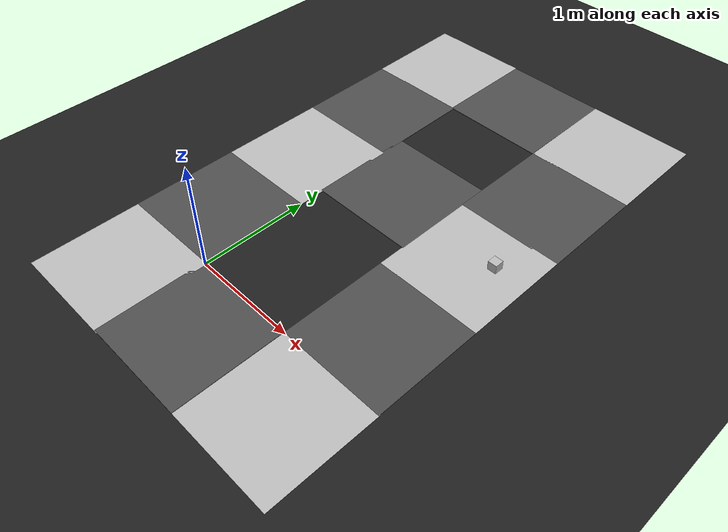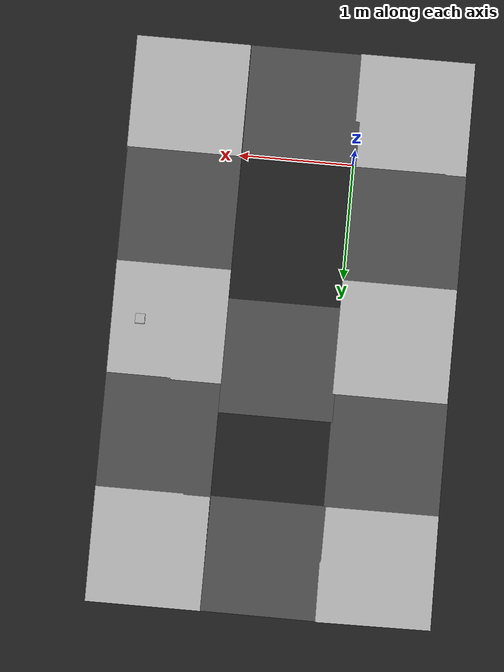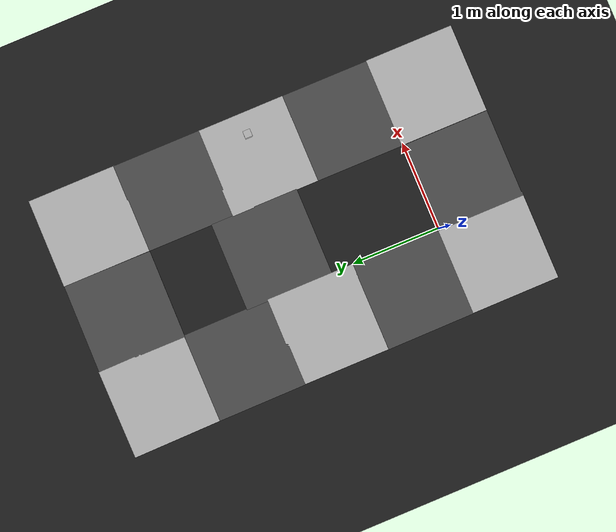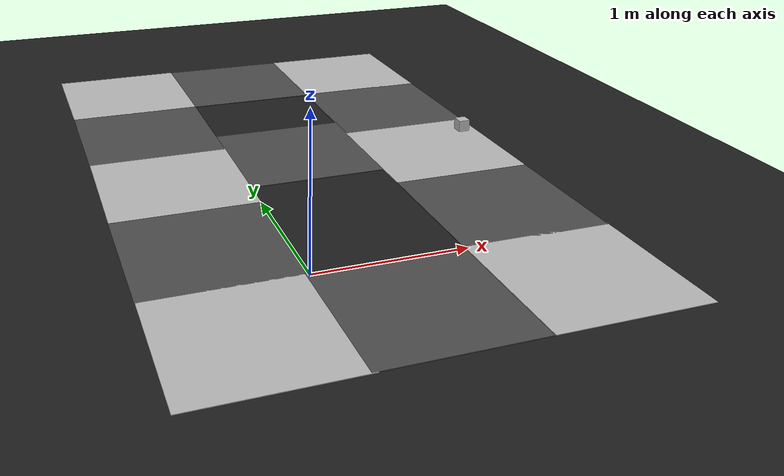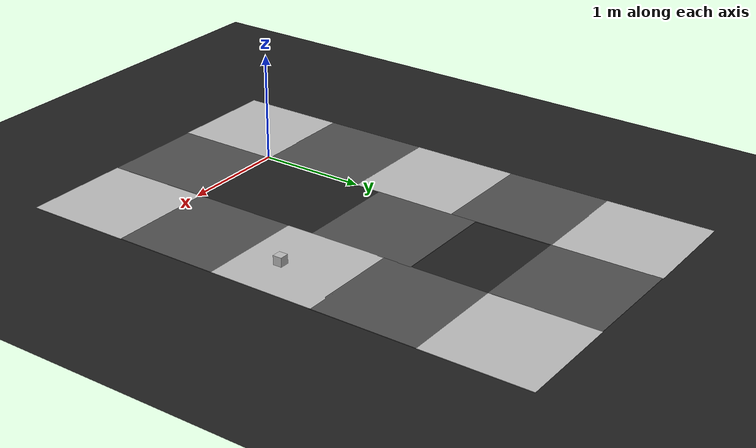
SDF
<sdf version="1.6">
 <world name="default">
  <light name="sun" type="directional">
   <pose>0 0 10 0 -0 0</pose>
   <diffuse>0.8 0.8 0.8 1</diffuse>
   <specular>0.2 0.2 0.2 1</specular>
   <attenuation>
    <range>1000</range>
    <constant>0.9</constant>
    <linear>0.01</linear>
    <quadratic>0.001</quadratic>
   </attenuation>
   <direction>-0.5 0.1 -0.9</direction>
  </light>
  <model name="ground_plane">
   <static>1</static>
   <link name="link">
    <collision name="collision">
     <geometry><plane><normal>0 0 1</normal><size>100 100</size></plane></geometry>
     <surface><friction><ode><mu>100</mu><mu2>50</mu2></ode></friction></surface>
    </collision>
    <visual name="visual">
     <cast_shadows>0</cast_shadows>
     <geometry><plane><normal>0 0 1</normal><size>100 100</size></plane></geometry>
     <material>
      <script><uri>file://media/materials/scripts/gazebo.material</uri><name>Gazebo/Black</name></script>
     </material>
    </visual>
   </link>
  </model>
  <gravity>0 0 -9.8</gravity>
  <magnetic_field>6e-06 2.3e-05 -4.2e-05</magnetic_field>
  <atmosphere type="adiabatic"/>
  <physics name="default_physics" default="0" type="ode">
   <max_step_size>0.01</max_step_size>
   <real_time_factor>1</real_time_factor>
   <real_time_update_rate>0</real_time_update_rate>
  </physics>
  <scene><ambient>0.4 0.4 0.4 1</ambient><background>0.7 0.7 0.7 1</background><shadows>1</shadows></scene>
  <spherical_coordinates>
   <surface_model>EARTH_WGS84</surface_model>
   <latitude_deg>0</latitude_deg>
   <longitude_deg>0</longitude_deg>
   <elevation>0</elevation>
   <heading_deg>0</heading_deg>
  </spherical_coordinates>
  <light name="user_directional_light_0" type="directional">
   <pose>-0.125952 -0.010846 1 0 -0 0</pose>
   <diffuse>0.5 0.5 0.5 1</diffuse>
   <specular>0.1 0.1 0.1 1</specular>
   <direction>0.1 0.1 -0.9</direction>
   <attenuation>
    <range>20</range>
    <constant>0.5</constant>
    <linear>0.01</linear>
    <quadratic>0.001</quadratic>
   </attenuation>
  </light>
  <model name="road_plane">
   <static>1</static>
   <link name="link">
    <collision name="collision"><geometry><box><size>0.5 0.5 0.005</size></box></geometry></collision>
    <visual name="visual">
     <cast_shadows>0</cast_shadows>
     <geometry><box><size>1 1 0.005</size></box></geometry>
     <material>
      <script>
       <uri>model://road_plane/materials/scripts</uri>
       <uri>model://road_plane/materials/textures</uri>
       <name>vrc/road</name>
      </script>
     </material>
    </visual>
   </link>
   <pose>0.474748 -0.479591 0 0 -0 0</pose>
  </model>
  <model name="road_diag">
   <static>1</static>
   <link name="link">
    <collision name="collision"><geometry><box><size>0.5 0.5 0.005</size></box></geometry></collision>
    <visual name="visual">
     <cast_shadows>0</cast_shadows>
     <geometry><box><size>1 1 0.005</size></box></geometry>
     <material>
      <script>
       <uri>model://road_diag/materials/scripts</uri>
       <uri>model://road_diag/materials/textures</uri>
       <name>vrc/diag</name>
      </script>
     </material>
    </visual>
   </link>
   <pose>1.47868 -0.480315 0 0 0 -1.57147</pose>
  </model>
  <model name="road_plane_0">
   <static>1</static>
   <link name="link">
    <collision name="collision"><geometry><box><size>0.5 0.5 0.005</size></box></geometry></collision>
    <visual name="visual">
     <cast_shadows>0</cast_shadows>
     <geometry><box><size>1 1 0.005</size></box></geometry>
     <material>
      <script>
       <uri>model://road_plane/materials/scripts</uri>
       <uri>model://road_plane/materials/textures</uri>
       <name>vrc/road</name>
      </script>
     </material>
    </visual>
   </link>
   <pose>1.47608 0.504135 0 0 -0 1.56891</pose>
  </model>
  <model name="road_plane_0_clone">
   <static>1</static>
   <link name="link">
    <collision name="collision"><geometry><box><size>0.5 0.5 0.005</size></box></geometry></collision>
    <visual name="visual">
     <cast_shadows>0</cast_shadows>
     <geometry><box><size>1 1 0.005</size></box></geometry>
     <material>
      <script>
       <uri>model://road_plane/materials/scripts</uri>
       <uri>model://road_plane/materials/textures</uri>
       <name>vrc/road</name>
      </script>
     </material>
    </visual>
   </link>
   <pose>1.47997 2.4864 0 0 -0 1.56891</pose>
  </model>
  <model name="road_diag_0">
   <static>1</static>
   <link name="link">
    <collision name="collision"><geometry><box><size>0.5 0.5 0.005</size></box></geometry></collision>
    <visual name="visual">
     <cast_shadows>0</cast_shadows>
     <geometry><box><size>1 1 0.005</size></box></geometry>
     <material>
      <script>
       <uri>model://road_diag/materials/scripts</uri>
       <uri>model://road_diag/materials/textures</uri>
       <name>vrc/diag</name>
      </script>
     </material>
    </visual>
   </link>
   <pose>1.48223 3.47704 0 0 -0 0</pose>
  </model>
  <model name="road_plane_clone">
   <static>1</static>
   <link name="link">
    <collision name="collision"><geometry><box><size>0.5 0.5 0.005</size></box></geometry></collision>
    <visual name="visual">
     <cast_shadows>0</cast_shadows>
     <geometry><box><size>1 1 0.005</size></box></geometry>
     <material>
      <script>
       <uri>model://road_plane/materials/scripts</uri>
       <uri>model://road_plane/materials/textures</uri>
       <name>vrc/road</name>
      </script>
     </material>
    </visual>
   </link>
   <pose>0.481067 3.47673 0 0 -0 3.13665</pose>
  </model>
  <model name="road_diag_0_clone">
   <static>1</static>
   <link name="link">
    <collision name="collision"><geometry><box><size>0.5 0.5 0.005</size></box></geometry></collision>
    <visual name="visual">
     <cast_shadows>0</cast_shadows>
     <geometry><box><size>1 1 0.005</size></box></geometry>
     <material>
      <script>
       <uri>model://road_diag/materials/scripts</uri>
       <uri>model://road_diag/materials/textures</uri>
       <name>vrc/diag</name>
      </script>
     </material>
    </visual>
   </link>
   <pose>-0.508599 3.47886 0 0 -0 1.58282</pose>
  </model>
  <model name="road_plane_0_clone_clone">
   <static>1</static>
   <link name="link">
    <collision name="collision"><geometry><box><size>0.5 0.5 0.005</size></box></geometry></collision>
    <visual name="visual">
     <cast_shadows>0</cast_shadows>
     <geometry><box><size>1 1 0.005</size></box></geometry>
     <material>
      <script>
       <uri>model://road_plane/materials/scripts</uri>
       <uri>model://road_plane/materials/textures</uri>
       <name>vrc/road</name>
      </script>
     </material>
    </visual>
   </link>
   <pose>-0.500601 2.48236 0 0 0 -1.56646</pose>
  </model>
  <model name="road_plane_0_clone_clone_clone">
   <static>1</static>
   <link name="link">
    <collision name="collision"><geometry><box><size>0.5 0.5 0.005</size></box></geometry></collision>
    <visual name="visual">
     <cast_shadows>0</cast_shadows>
     <geometry><box><size>1 1 0.005</size></box></geometry>
     <material>
      <script>
       <uri>model://road_plane/materials/scripts</uri>
       <uri>model://road_plane/materials/textures</uri>
       <name>vrc/road</name>
      </script>
     </material>
    </visual>
   </link>
   <pose>-0.495631 0.507392 0 0 0 -1.56646</pose>
  </model>
  <model name="road_diag_clone">
   <static>1</static>
   <link name="link">
    <collision name="collision"><geometry><box><size>0.5 0.5 0.005</size></box></geometry></collision>
    <visual name="visual">
     <cast_shadows>0</cast_shadows>
     <geometry><box><size>1 1 0.005</size></box></geometry>
     <material>
      <script>
       <uri>model://road_diag/materials/scripts</uri>
       <uri>model://road_diag/materials/textures</uri>
       <name>vrc/diag</name>
      </script>
     </material>
    </visual>
   </link>
   <pose>-0.488946 -0.486041 0 0 0 -3.14005</pose>
  </model>
  <model name="road_inter">
   <static>1</static>
   <link name="link">
    <collision name="collision"><geometry><box><size>0.5 0.5 0.005</size></box></geometry></collision>
    <visual name="visual">
     <cast_shadows>0</cast_shadows>
     <geometry><box><size>1 1 0.005</size></box></geometry>
     <material>
      <script>
       <uri>model://road_inter/materials/scripts</uri>
       <uri>model://road_inter/materials/textures</uri>
       <name>vrc/inter</name>
      </script>
     </material>
    </visual>
   </link>
   <pose>1.47728 1.50186 0 0 -0 0</pose>
  </model>
  <model name="road_inter_0">
   <static>1</static>
   <link name="link">
    <collision name="collision"><geometry><box><size>0.5 0.5 0.005</size></box></geometry></collision>
    <visual name="visual">
     <cast_shadows>0</cast_shadows>
     <geometry><box><size>1 1 0.005</size></box></geometry>
     <material>
      <script>
       <uri>model://road_inter/materials/scripts</uri>
       <uri>model://road_inter/materials/textures</uri>
       <name>vrc/inter</name>
      </script>
     </material>
    </visual>
   </link>
   <pose>-0.495351 1.50569 0 0 -0 3.14073</pose>
  </model>
  <model name="road_plane_1">
   <static>1</static>
   <link name="link">
    <collision name="collision"><geometry><box><size>0.5 0.5 0.005</size></box></geometry></collision>
    <visual name="visual">
     <cast_shadows>0</cast_shadows>
     <geometry><box><size>1 1 0.005</size></box></geometry>
     <material>
      <script>
       <uri>model://road_plane/materials/scripts</uri>
       <uri>model://road_plane/materials/textures</uri>
       <name>vrc/road</name>
      </script>
     </material>
    </visual>
   </link>
   <pose>0.485788 1.75081 0 0 -0 0</pose>
  </model>
  <model name="Untitled">
   <link name="link_0">
    <inertial>
     <mass>1</mass>
     <inertia>
      <ixx>0.166667</ixx>
      <ixy>0</ixy>
      <ixz>0</ixz>
      <iyy>0.166667</iyy>
      <iyz>0</iyz>
      <izz>0.166667</izz>
     </inertia>
    </inertial>
    <gravity>0</gravity>
    <visual name="visual">
     <geometry><box><size>0.0831829 0.0831829 0.0831829</size></box></geometry>
     <plugin name="blink" filename="libBlinkVisualPlugin.so">
      <color_a>0 1 0 1</color_a>
      <color_b>0 1 0 0</color_b>
      <period>0.5</period>
      <use_wall_time>true</use_wall_time>
     </plugin>
    </visual>
    <collision name="collision">
     <geometry><box><size>0.0831829 0.0831829 0.0831829</size></box></geometry>
     <surface>
      <friction>
       <ode><mu>1</mu><mu2>1</mu2><fdir1>0 0 0</fdir1><slip1>0</slip1><slip2>0</slip2></ode>
       <torsional>
        <coefficient>1</coefficient>
        <patch_radius>0</patch_radius>
        <surface_radius>0</surface_radius>
        <use_patch_radius>1</use_patch_radius>
        <ode><slip>0</slip></ode>
       </torsional>
      </friction>
      <bounce><restitution_coefficient>0</restitution_coefficient><threshold>1e+06</threshold></bounce>
      <contact>
       <collide_without_contact>0</collide_without_contact>
       <collide_without_contact_bitmask>1</collide_without_contact_bitmask>
       <collide_bitmask>1</collide_bitmask>
       <ode>
        <soft_cfm>0</soft_cfm>
        <soft_erp>0.2</soft_erp>
        <kp>1e+13</kp>
        <kd>1</kd>
        <max_vel>0.01</max_vel>
        <min_depth>0</min_depth>
       </ode>
       <bullet>
        <split_impulse>1</split_impulse>
        <split_impulse_penetration_threshold>-0.01</split_impulse_penetration_threshold>
        <soft_cfm>0</soft_cfm>
        <soft_erp>0.2</soft_erp>
        <kp>1e+13</kp>
        <kd>1</kd>
       </bullet>
      </contact>
     </surface>
    </collision>
   </link>
   <static>0</static>
   <pose>1.721 1.5111 0.163555 0 -0 0</pose>
  </model>
 </world>
</sdf>
